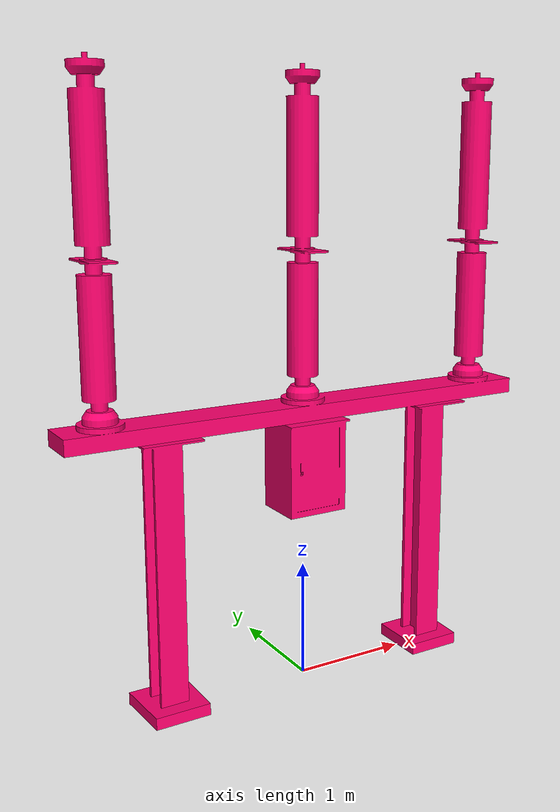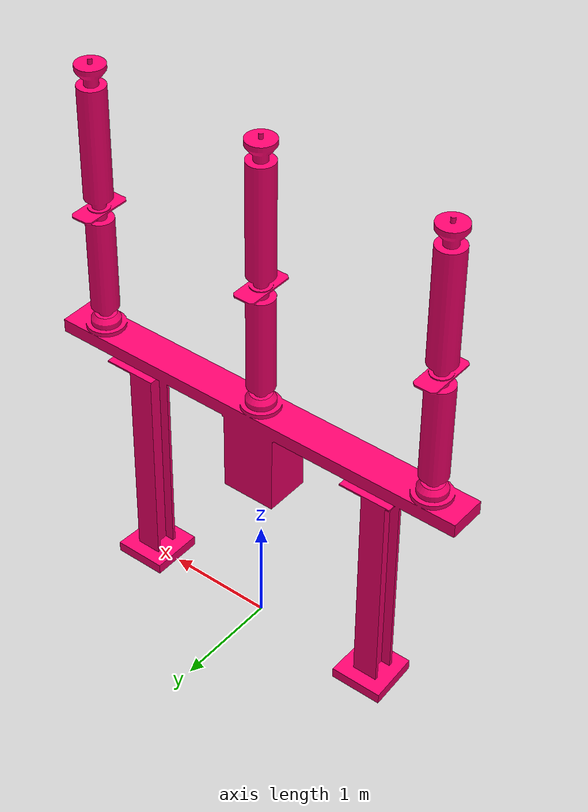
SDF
<?xml version="1.0" ?>
<sdf version="1.8">
  <model name="Electrical_Array_6">
    <static>true</static>
    <link name="link">
      <collision name="collision">
        <geometry>
          <mesh>
            <uri>model://Electrical_Array_6/Meshes/Electrical_Array_6.stl</uri>
            <scale>0.001 0.001 0.001</scale>
          </mesh>
        </geometry>
      </collision>

      <visual name="visual">
        <geometry>
          <mesh>
            <uri>model://Electrical_Array_6/Meshes/Electrical_Array_6.stl</uri>
            <scale>0.001 0.001 0.001</scale>
          </mesh>
        </geometry>
        <material>
          <diffuse>1.0 0.0 0.43 1.0</diffuse>
        </material>
      </visual>
    </link>
  </model>
</sdf>
